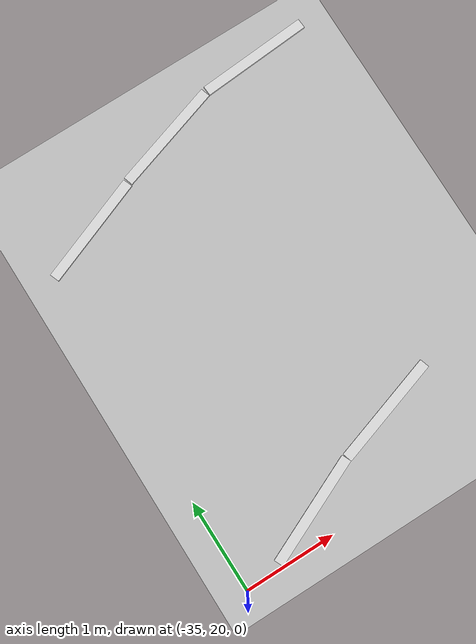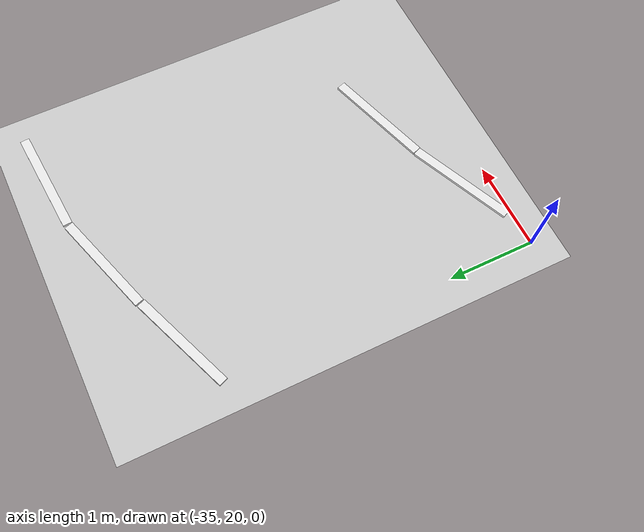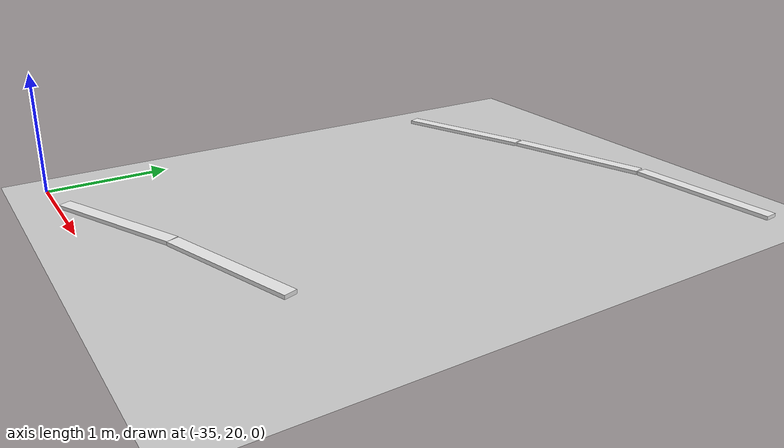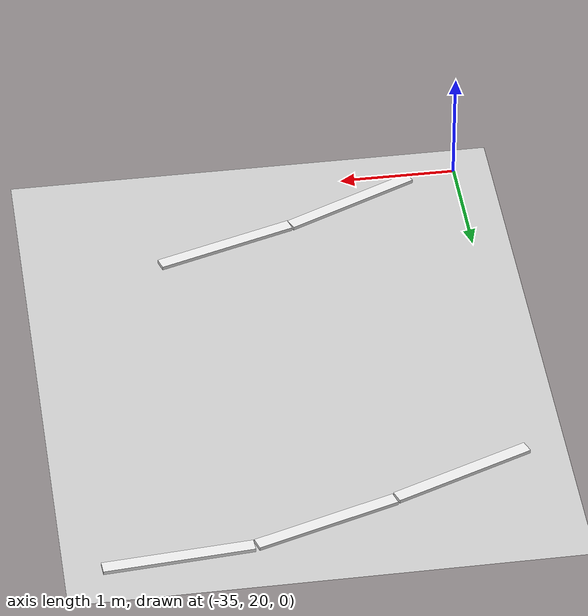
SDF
<sdf version="1.7">
 <world name="default">
  <model name="ground_plane">
   <static>1</static>
   <link name="link">
    <collision name="collision">
     <geometry><plane><normal>0 0 1</normal><size>100 100</size></plane></geometry>
     <surface><friction><ode><mu>100</mu><mu2>50</mu2></ode></friction></surface>
    </collision>
    <visual name="visual">
     <cast_shadows>0</cast_shadows>
     <geometry><plane><normal>0 0 1</normal><size>100 100</size></plane></geometry>
     <material>
      <script><uri>file://media/materials/scripts/gazebo.material</uri><name>Gazebo/Grey</name></script>
     </material>
    </visual>
   </link>
  </model>
  <model name="road_way_clone_clone_clone_0_clone_clone_clone_clone_0_clone_0_clone_0_clone_clone_clone_clone_clone_clone_clone_10_clone_2_clone_0_clone_0">
   <link name="link">
    <inertial>
     <mass>1</mass>
     <inertia>
      <ixx>0.166667</ixx>
      <ixy>0</ixy>
      <ixz>0</ixz>
      <iyy>0.166667</iyy>
      <iyz>0</iyz>
      <izz>0.166667</izz>
     </inertia>
    </inertial>
    <visual name="visual">
     <geometry><box><size>0.106644 1.22348 0.03129</size></box></geometry>
     <material>
      <script><name>Gazebo/White</name><uri>file://media/materials/scripts/gazebo.material</uri></script>
      <shader type="pixel"><normal_map>__default__</normal_map></shader>
      <ambient>1 1 1 1</ambient>
      <diffuse>1 1 1 1</diffuse>
      <specular>0 0 0 1</specular>
      <emissive>0 0 0 1</emissive>
     </material>
    </visual>
    <collision name="collision">
     <geometry><box><size>0.10644 1.22348 0.03129</size></box></geometry>
     <surface>
      <friction>
       <ode><mu>1</mu><mu2>1</mu2><fdir1>0 0 0</fdir1><slip1>0</slip1><slip2>0</slip2></ode>
       <torsional>
        <coefficient>1</coefficient>
        <patch_radius>0</patch_radius>
        <surface_radius>0</surface_radius>
        <use_patch_radius>1</use_patch_radius>
        <ode><slip>0</slip></ode>
       </torsional>
      </friction>
      <bounce><restitution_coefficient>0</restitution_coefficient><threshold>1e+06</threshold></bounce>
      <contact>
       <collide_without_contact>0</collide_without_contact>
       <collide_without_contact_bitmask>1</collide_without_contact_bitmask>
       <collide_bitmask>1</collide_bitmask>
       <ode>
        <soft_cfm>0</soft_cfm>
        <soft_erp>0.2</soft_erp>
        <kp>1e+13</kp>
        <kd>1</kd>
        <max_vel>0.01</max_vel>
        <min_depth>0</min_depth>
       </ode>
       <bullet>
        <split_impulse>1</split_impulse>
        <split_impulse_penetration_threshold>-0.01</split_impulse_penetration_threshold>
        <soft_cfm>0</soft_cfm>
        <soft_erp>0.2</soft_erp>
        <kp>1e+13</kp>
        <kd>1</kd>
       </bullet>
      </contact>
     </surface>
    </collision>
   </link>
   <static>0</static>
   <pose>-32.0514 24.5198 0.015638 -1.1e-05 -0 1.64512</pose>
  </model>
  <model name="road_way_clone_clone_clone_0_clone_clone_clone_clone_0_clone_0_clone_0_clone_clone_clone_clone_clone_clone_clone_10_clone_2_clone_0_clone_1">
   <link name="link">
    <inertial>
     <mass>1</mass>
     <inertia>
      <ixx>0.166667</ixx>
      <ixy>0</ixy>
      <ixz>0</ixz>
      <iyy>0.166667</iyy>
      <iyz>0</iyz>
      <izz>0.166667</izz>
     </inertia>
    </inertial>
    <visual name="visual">
     <geometry><box><size>0.106644 1.22348 0.03129</size></box></geometry>
     <material>
      <script><name>Gazebo/White</name><uri>file://media/materials/scripts/gazebo.material</uri></script>
      <shader type="pixel"><normal_map>__default__</normal_map></shader>
      <ambient>1 1 1 1</ambient>
      <diffuse>1 1 1 1</diffuse>
      <specular>0 0 0 1</specular>
      <emissive>0 0 0 1</emissive>
     </material>
    </visual>
    <collision name="collision">
     <geometry><box><size>0.10644 1.22348 0.03129</size></box></geometry>
     <surface>
      <friction>
       <ode><mu>1</mu><mu2>1</mu2><fdir1>0 0 0</fdir1><slip1>0</slip1><slip2>0</slip2></ode>
       <torsional>
        <coefficient>1</coefficient>
        <patch_radius>0</patch_radius>
        <surface_radius>0</surface_radius>
        <use_patch_radius>1</use_patch_radius>
        <ode><slip>0</slip></ode>
       </torsional>
      </friction>
      <bounce><restitution_coefficient>0</restitution_coefficient><threshold>1e+06</threshold></bounce>
      <contact>
       <collide_without_contact>0</collide_without_contact>
       <collide_without_contact_bitmask>1</collide_without_contact_bitmask>
       <collide_bitmask>1</collide_bitmask>
       <ode>
        <soft_cfm>0</soft_cfm>
        <soft_erp>0.2</soft_erp>
        <kp>1e+13</kp>
        <kd>1</kd>
        <max_vel>0.01</max_vel>
        <min_depth>0</min_depth>
       </ode>
       <bullet>
        <split_impulse>1</split_impulse>
        <split_impulse_penetration_threshold>-0.01</split_impulse_penetration_threshold>
        <soft_cfm>0</soft_cfm>
        <soft_erp>0.2</soft_erp>
        <kp>1e+13</kp>
        <kd>1</kd>
       </bullet>
      </contact>
     </surface>
    </collision>
   </link>
   <static>0</static>
   <pose>-33.2642 24.2841 0.015638 1.1e-05 -0 1.87924</pose>
  </model>
  <model name="road_way_clone_clone_clone_0_clone_clone_clone_clone_0_clone_0_clone_0_clone_clone_clone_clone_clone_clone_clone_10_clone_2_clone_0_clone_1_clone">
   <link name="link">
    <inertial>
     <mass>1</mass>
     <inertia>
      <ixx>0.166667</ixx>
      <ixy>0</ixy>
      <ixz>0</ixz>
      <iyy>0.166667</iyy>
      <iyz>0</iyz>
      <izz>0.166667</izz>
     </inertia>
    </inertial>
    <visual name="visual">
     <geometry><box><size>0.106644 1.22348 0.03129</size></box></geometry>
     <material>
      <script><name>Gazebo/White</name><uri>file://media/materials/scripts/gazebo.material</uri></script>
      <shader type="pixel"><normal_map>__default__</normal_map></shader>
      <ambient>1 1 1 1</ambient>
      <diffuse>1 1 1 1</diffuse>
      <specular>0 0 0 1</specular>
      <emissive>0 0 0 1</emissive>
     </material>
    </visual>
    <collision name="collision">
     <geometry><box><size>0.10644 1.22348 0.03129</size></box></geometry>
     <surface>
      <friction>
       <ode><mu>1</mu><mu2>1</mu2><fdir1>0 0 0</fdir1><slip1>0</slip1><slip2>0</slip2></ode>
       <torsional>
        <coefficient>1</coefficient>
        <patch_radius>0</patch_radius>
        <surface_radius>0</surface_radius>
        <use_patch_radius>1</use_patch_radius>
        <ode><slip>0</slip></ode>
       </torsional>
      </friction>
      <bounce><restitution_coefficient>0</restitution_coefficient><threshold>1e+06</threshold></bounce>
      <contact>
       <collide_without_contact>0</collide_without_contact>
       <collide_without_contact_bitmask>1</collide_without_contact_bitmask>
       <collide_bitmask>1</collide_bitmask>
       <ode>
        <soft_cfm>0</soft_cfm>
        <soft_erp>0.2</soft_erp>
        <kp>1e+13</kp>
        <kd>1</kd>
        <max_vel>0.01</max_vel>
        <min_depth>0</min_depth>
       </ode>
       <bullet>
        <split_impulse>1</split_impulse>
        <split_impulse_penetration_threshold>-0.01</split_impulse_penetration_threshold>
        <soft_cfm>0</soft_cfm>
        <soft_erp>0.2</soft_erp>
        <kp>1e+13</kp>
        <kd>1</kd>
       </bullet>
      </contact>
     </surface>
    </collision>
   </link>
   <static>0</static>
   <pose>-32.8911 20.7441 0.015639 -1e-05 -0 1.87957</pose>
  </model>
  <model name="road_way_clone_clone_clone_0_clone_clone_clone_clone_0_clone_0_clone_0_clone_clone_clone_clone_clone_clone_clone_10_clone_2_clone_0_clone_1_clone_0">
   <link name="link">
    <inertial>
     <mass>1</mass>
     <inertia>
      <ixx>0.166667</ixx>
      <ixy>0</ixy>
      <ixz>0</ixz>
      <iyy>0.166667</iyy>
      <iyz>0</iyz>
      <izz>0.166667</izz>
     </inertia>
    </inertial>
    <visual name="visual">
     <geometry><box><size>0.106644 1.22348 0.03129</size></box></geometry>
     <material>
      <script><name>Gazebo/White</name><uri>file://media/materials/scripts/gazebo.material</uri></script>
      <shader type="pixel"><normal_map>__default__</normal_map></shader>
      <ambient>1 1 1 1</ambient>
      <diffuse>1 1 1 1</diffuse>
      <specular>0 0 0 1</specular>
      <emissive>0 0 0 1</emissive>
     </material>
    </visual>
    <collision name="collision">
     <geometry><box><size>0.10644 1.22348 0.03129</size></box></geometry>
     <surface>
      <friction>
       <ode><mu>1</mu><mu2>1</mu2><fdir1>0 0 0</fdir1><slip1>0</slip1><slip2>0</slip2></ode>
       <torsional>
        <coefficient>1</coefficient>
        <patch_radius>0</patch_radius>
        <surface_radius>0</surface_radius>
        <use_patch_radius>1</use_patch_radius>
        <ode><slip>0</slip></ode>
       </torsional>
      </friction>
      <bounce><restitution_coefficient>0</restitution_coefficient><threshold>1e+06</threshold></bounce>
      <contact>
       <collide_without_contact>0</collide_without_contact>
       <collide_without_contact_bitmask>1</collide_without_contact_bitmask>
       <collide_bitmask>1</collide_bitmask>
       <ode>
        <soft_cfm>0</soft_cfm>
        <soft_erp>0.2</soft_erp>
        <kp>1e+13</kp>
        <kd>1</kd>
        <max_vel>0.01</max_vel>
        <min_depth>0</min_depth>
       </ode>
       <bullet>
        <split_impulse>1</split_impulse>
        <split_impulse_penetration_threshold>-0.01</split_impulse_penetration_threshold>
        <soft_cfm>0</soft_cfm>
        <soft_erp>0.2</soft_erp>
        <kp>1e+13</kp>
        <kd>1</kd>
       </bullet>
      </contact>
     </surface>
    </collision>
   </link>
   <static>0</static>
   <pose>-34.4291 23.8653 0.015638 1.1e-05 -0 1.93979</pose>
  </model>
  <model name="road_way_clone_clone_clone_0_clone_clone_clone_clone_0_clone_0_clone_0_clone_clone_clone_clone_clone_clone_clone_10_clone_2_clone_0_clone_1_clone_0_clone">
   <link name="link">
    <inertial>
     <mass>1</mass>
     <inertia>
      <ixx>0.166667</ixx>
      <ixy>0</ixy>
      <ixz>0</ixz>
      <iyy>0.166667</iyy>
      <iyz>0</iyz>
      <izz>0.166667</izz>
     </inertia>
    </inertial>
    <visual name="visual">
     <geometry><box><size>0.106644 1.22348 0.03129</size></box></geometry>
     <material>
      <script><name>Gazebo/White</name><uri>file://media/materials/scripts/gazebo.material</uri></script>
      <shader type="pixel"><normal_map>__default__</normal_map></shader>
      <ambient>1 1 1 1</ambient>
      <diffuse>1 1 1 1</diffuse>
      <specular>0 0 0 1</specular>
      <emissive>0 0 0 1</emissive>
     </material>
    </visual>
    <collision name="collision">
     <geometry><box><size>0.10644 1.22348 0.03129</size></box></geometry>
     <surface>
      <friction>
       <ode><mu>1</mu><mu2>1</mu2><fdir1>0 0 0</fdir1><slip1>0</slip1><slip2>0</slip2></ode>
       <torsional>
        <coefficient>1</coefficient>
        <patch_radius>0</patch_radius>
        <surface_radius>0</surface_radius>
        <use_patch_radius>1</use_patch_radius>
        <ode><slip>0</slip></ode>
       </torsional>
      </friction>
      <bounce><restitution_coefficient>0</restitution_coefficient><threshold>1e+06</threshold></bounce>
      <contact>
       <collide_without_contact>0</collide_without_contact>
       <collide_without_contact_bitmask>1</collide_without_contact_bitmask>
       <collide_bitmask>1</collide_bitmask>
       <ode>
        <soft_cfm>0</soft_cfm>
        <soft_erp>0.2</soft_erp>
        <kp>1e+13</kp>
        <kd>1</kd>
        <max_vel>0.01</max_vel>
        <min_depth>0</min_depth>
       </ode>
       <bullet>
        <split_impulse>1</split_impulse>
        <split_impulse_penetration_threshold>-0.01</split_impulse_penetration_threshold>
        <soft_cfm>0</soft_cfm>
        <soft_erp>0.2</soft_erp>
        <kp>1e+13</kp>
        <kd>1</kd>
       </bullet>
      </contact>
     </surface>
    </collision>
   </link>
   <static>0</static>
   <pose>-34.0389 20.3095 0.015639 -1e-05 -0 1.99261</pose>
  </model>
 </world>
</sdf>
